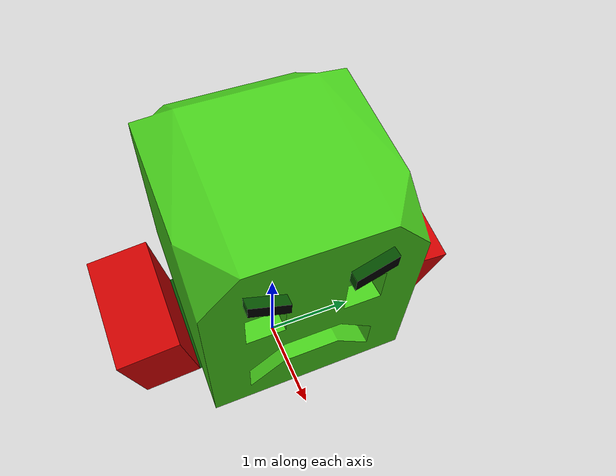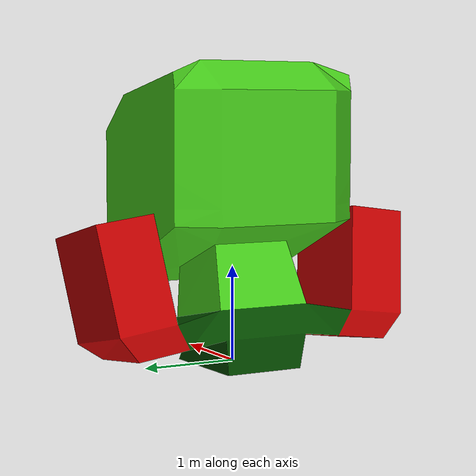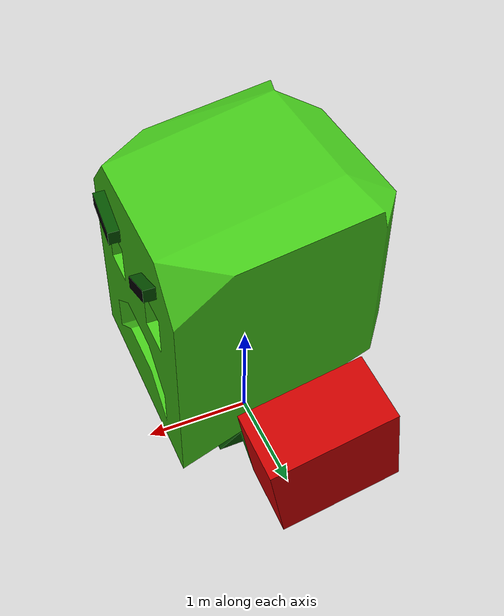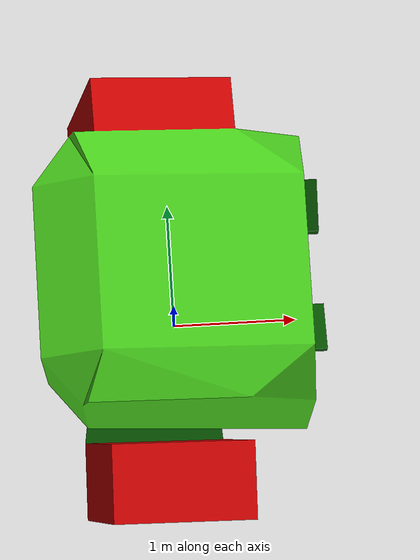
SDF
<?xml version="1.0" ?>
<sdf version="1.7">
  <model name="jokerbot">
    <static>false</static>

    <link name="jokerbot_link">

      <visual name="jokerbot_visual">
        <geometry>
          <mesh>
            <uri>model://jokerbot/meshes/jokerbot.dae</uri>
            <scale>1 1 1</scale>
          </mesh>
        </geometry>
      </visual>

      <collision name="jokerbot_collision">
        <geometry>
          <mesh>
            <uri>model://jokerbot/meshes/jokerbot.dae</uri>
            <scale>1 1 1</scale>
          </mesh>
        </geometry>
      </collision>

    </link>
  </model>
</sdf>
